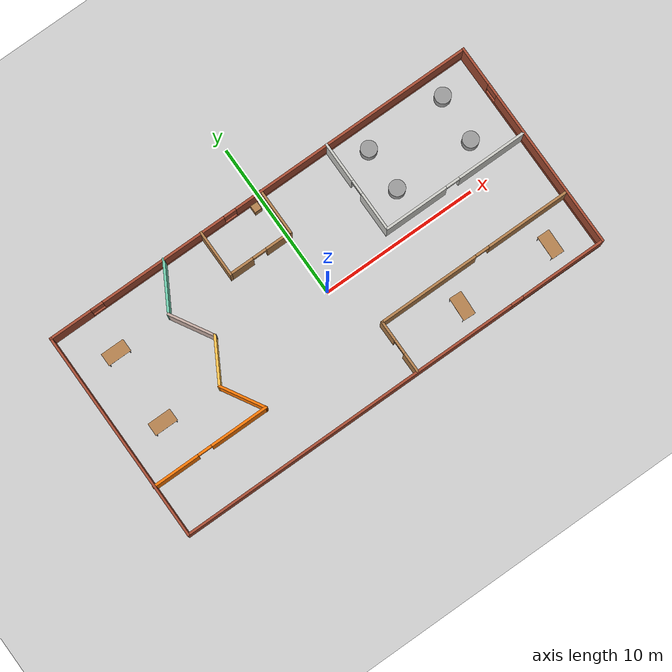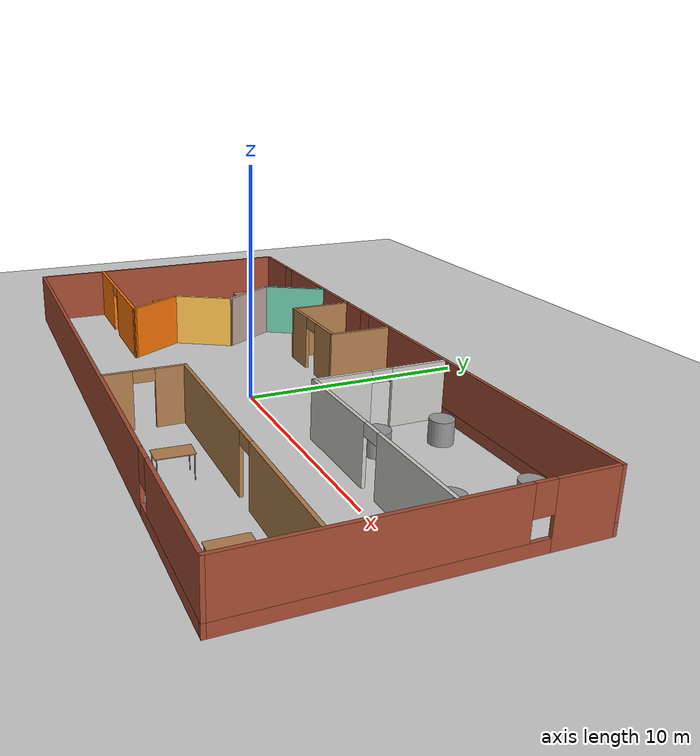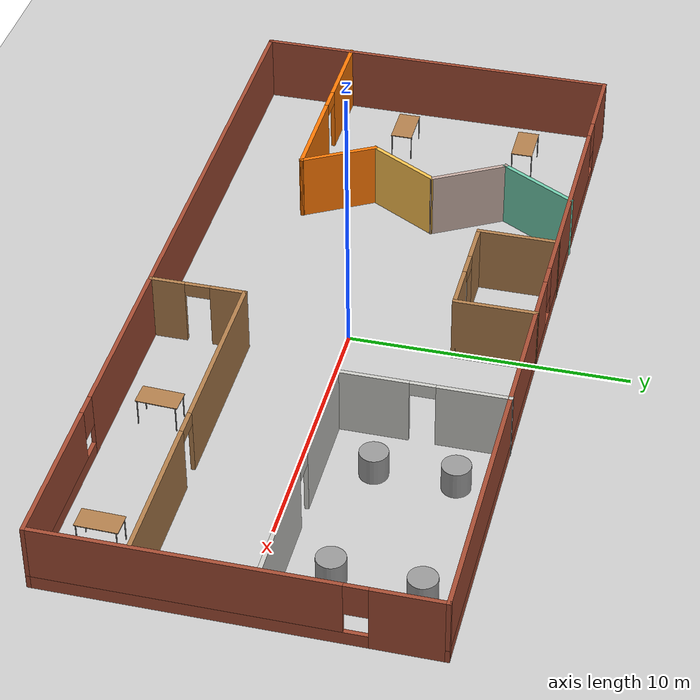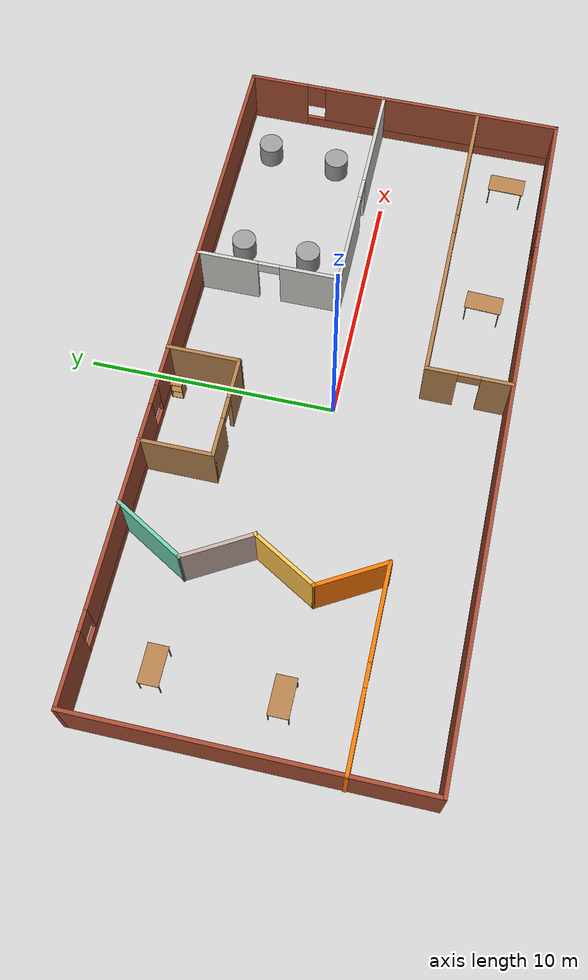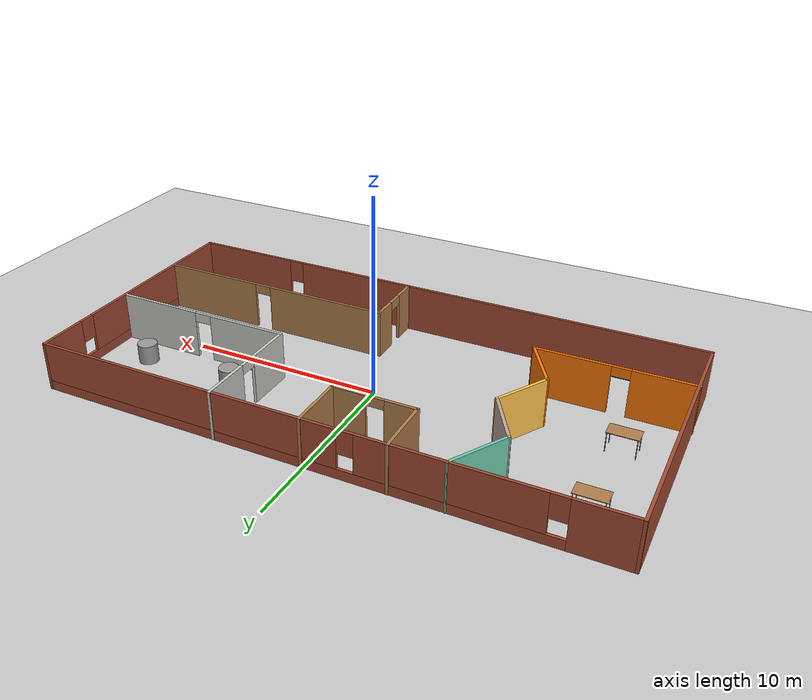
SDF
<sdf version="1.7">
 <world name="default">
  <light name="sun" type="directional">
   <pose>0 0 10 0 -0 0</pose>
   <diffuse>0.8 0.8 0.8 1</diffuse>
   <specular>0.2 0.2 0.2 1</specular>
   <attenuation>
    <range>1000</range>
    <constant>0.9</constant>
    <linear>0.01</linear>
    <quadratic>0.001</quadratic>
   </attenuation>
   <direction>-0.5 0.1 -0.9</direction>
   <spot><inner_angle>0</inner_angle><outer_angle>0</outer_angle><falloff>0</falloff></spot>
  </light>
  <model name="ground_plane">
   <static>1</static>
   <link name="link">
    <collision name="collision">
     <geometry><plane><normal>0 0 1</normal><size>100 100</size></plane></geometry>
     <surface>
      <contact><collide_bitmask>65535</collide_bitmask></contact>
      <friction><ode><mu>100</mu><mu2>50</mu2></ode></friction>
     </surface>
    </collision>
    <visual name="visual">
     <cast_shadows>0</cast_shadows>
     <geometry><plane><normal>0 0 1</normal><size>100 100</size></plane></geometry>
     <material>
      <script><uri>file://media/materials/scripts/gazebo.material</uri><name>Gazebo/Grey</name></script>
     </material>
    </visual>
   </link>
  </model>
  <gravity>0 0 -9.8</gravity>
  <magnetic_field>6e-06 2.3e-05 -4.2e-05</magnetic_field>
  <atmosphere type="adiabatic"/>
  <physics name="default_physics" default="0" type="ode">
   <max_step_size>0.001</max_step_size>
   <real_time_factor>1</real_time_factor>
   <real_time_update_rate>1000</real_time_update_rate>
  </physics>
  <scene><ambient>0.4 0.4 0.4 1</ambient><background>0.7 0.7 0.7 1</background><shadows>1</shadows></scene>
  <spherical_coordinates>
   <surface_model>EARTH_WGS84</surface_model>
   <latitude_deg>0</latitude_deg>
   <longitude_deg>0</longitude_deg>
   <elevation>0</elevation>
   <heading_deg>0</heading_deg>
  </spherical_coordinates>
  <model name="office">
   <pose>-0.0877 -0.031287 0 0 -0 0</pose>
   <link name="Wall_0">
    <collision name="Wall_0_Collision">
     <geometry><box><size>13.5 0.15 2.5</size></box></geometry>
     <pose>0 0 1.25 0 -0 0</pose>
    </collision>
    <visual name="Wall_0_Visual">
     <pose>0 0 1.25 0 -0 0</pose>
     <geometry><box><size>13.5 0.15 2.5</size></box></geometry>
     <material>
      <script><uri>file://media/materials/scripts/gazebo.material</uri><name>Gazebo/Bricks</name></script>
      <ambient>1 1 1 1</ambient>
     </material>
     <meta><layer>0</layer></meta>
    </visual>
    <pose>-14.1592 -0.021409 0 0 0 -1.5708</pose>
   </link>
   <link name="Wall_1">
    <pose>0.015849 -6.69641 0 0 -0 0</pose>
    <visual name="Wall_1_Visual_0">
     <pose>-3.18138 0 1.25 0 -0 0</pose>
     <geometry><box><size>22.1372 0.15 2.5</size></box></geometry>
     <material>
      <script><uri>file://media/materials/scripts/gazebo.material</uri><name>Gazebo/Bricks</name></script>
      <ambient>1 1 1 1</ambient>
     </material>
     <meta><layer>0</layer></meta>
    </visual>
    <collision name="Wall_1_Collision_0">
     <geometry><box><size>22.1372 0.15 2.5</size></box></geometry>
     <pose>-3.18138 0 1.25 0 -0 0</pose>
    </collision>
    <visual name="Wall_1_Visual_1">
     <pose>11.0686 0 0.25 0 -0 0</pose>
     <geometry><box><size>6.36277 0.15 0.5</size></box></geometry>
     <material>
      <script><uri>file://media/materials/scripts/gazebo.material</uri><name>Gazebo/Bricks</name></script>
      <ambient>1 1 1 1</ambient>
     </material>
     <meta><layer>0</layer></meta>
    </visual>
    <collision name="Wall_1_Collision_1">
     <geometry><box><size>6.36277 0.15 0.5</size></box></geometry>
     <pose>11.0686 0 0.25 0 -0 0</pose>
    </collision>
    <visual name="Wall_1_Visual_2">
     <pose>11.4686 0 1.5 0 -0 0</pose>
     <geometry><box><size>5.56277 0.15 2</size></box></geometry>
     <material>
      <script><uri>file://media/materials/scripts/gazebo.material</uri><name>Gazebo/Bricks</name></script>
      <ambient>1 1 1 1</ambient>
     </material>
     <meta><layer>0</layer></meta>
    </visual>
    <collision name="Wall_1_Collision_2">
     <geometry><box><size>5.56277 0.15 2</size></box></geometry>
     <pose>11.4686 0 1.5 0 -0 0</pose>
    </collision>
    <visual name="Wall_1_Visual_3">
     <pose>8.28723 0 1.9 0 -0 0</pose>
     <geometry><box><size>0.8 0.15 1.2</size></box></geometry>
     <material>
      <script><uri>file://media/materials/scripts/gazebo.material</uri><name>Gazebo/Bricks</name></script>
      <ambient>1 1 1 1</ambient>
     </material>
     <meta><layer>0</layer></meta>
    </visual>
    <collision name="Wall_1_Collision_3">
     <geometry><box><size>0.8 0.15 1.2</size></box></geometry>
     <pose>8.28723 0 1.9 0 -0 0</pose>
    </collision>
   </link>
   <link name="Wall_10">
    <collision name="Wall_10_Collision">
     <geometry><box><size>3 0.15 2.5</size></box></geometry>
     <pose>0 0 1.25 0 -0 0</pose>
    </collision>
    <visual name="Wall_10_Visual">
     <pose>0 0 1.25 0 -0 0</pose>
     <geometry><box><size>3 0.15 2.5</size></box></geometry>
     <material>
      <script><uri>file://media/materials/scripts/gazebo.material</uri><name>Gazebo/Grey</name></script>
      <ambient>0.760784 0.662745 0.627451 1</ambient>
     </material>
     <meta><layer>0</layer></meta>
    </visual>
    <pose>-7.30335 2.75019 0 0 0 -1.0472</pose>
   </link>
   <link name="Wall_11">
    <collision name="Wall_11_Collision">
     <geometry><box><size>3 0.15 2.5</size></box></geometry>
     <pose>0 0 1.25 0 -0 0</pose>
    </collision>
    <visual name="Wall_11_Visual">
     <pose>0 0 1.25 0 -0 0</pose>
     <geometry><box><size>3 0.15 2.5</size></box></geometry>
     <material>
      <script><uri>file://media/materials/scripts/gazebo.material</uri><name>Gazebo/Grey</name></script>
      <ambient>1 0.764706 0.305882 1</ambient>
     </material>
     <meta><layer>0</layer></meta>
    </visual>
    <pose>-7.30335 0.282021 0 0 0 -2.0944</pose>
   </link>
   <link name="Wall_12">
    <collision name="Wall_12_Collision">
     <geometry><box><size>3 0.15 2.5</size></box></geometry>
     <pose>0 0 1.25 0 -0 0</pose>
    </collision>
    <visual name="Wall_12_Visual">
     <pose>0 0 1.25 0 -0 0</pose>
     <geometry><box><size>3 0.15 2.5</size></box></geometry>
     <material>
      <script><uri>file://media/materials/scripts/gazebo.material</uri><name>Gazebo/Grey</name></script>
      <ambient>0.996078 0.47451 0.0196078 1</ambient>
     </material>
     <meta><layer>0</layer></meta>
    </visual>
    <pose>-7.30335 -2.18615 0 0 0 -1.0472</pose>
   </link>
   <link name="Wall_13">
    <pose>-10.3909 -3.42024 0 0 -0 3.14159</pose>
    <visual name="Wall_13_Visual_0">
     <pose>-1.98848 0 1.25 0 -0 0</pose>
     <geometry><box><size>3.77303 0.15 2.5</size></box></geometry>
     <material>
      <script><uri>file://media/materials/scripts/gazebo.material</uri><name>Gazebo/Grey</name></script>
      <ambient>0.996078 0.47451 0.0196078 1</ambient>
     </material>
     <meta><layer>0</layer></meta>
    </visual>
    <collision name="Wall_13_Collision_0">
     <geometry><box><size>3.77303 0.15 2.5</size></box></geometry>
     <pose>-1.98848 0 1.25 0 -0 0</pose>
    </collision>
    <visual name="Wall_13_Visual_1">
     <pose>2.33652 0 1.25 0 -0 0</pose>
     <geometry><box><size>3.07697 0.15 2.5</size></box></geometry>
     <material>
      <script><uri>file://media/materials/scripts/gazebo.material</uri><name>Gazebo/Grey</name></script>
      <ambient>0.996078 0.47451 0.0196078 1</ambient>
     </material>
     <meta><layer>0</layer></meta>
    </visual>
    <collision name="Wall_13_Collision_1">
     <geometry><box><size>3.07697 0.15 2.5</size></box></geometry>
     <pose>2.33652 0 1.25 0 -0 0</pose>
    </collision>
    <visual name="Wall_13_Visual_2">
     <pose>0.348034 0 2.25 0 -0 0</pose>
     <geometry><box><size>0.9 0.15 0.5</size></box></geometry>
     <material>
      <script><uri>file://media/materials/scripts/gazebo.material</uri><name>Gazebo/Grey</name></script>
      <ambient>0.996078 0.47451 0.0196078 1</ambient>
     </material>
     <meta><layer>0</layer></meta>
    </visual>
    <collision name="Wall_13_Collision_2">
     <geometry><box><size>0.9 0.15 0.5</size></box></geometry>
     <pose>0.348034 0 2.25 0 -0 0</pose>
    </collision>
   </link>
   <link name="Wall_15">
    <pose>4.73531 3.74396 0 0 0 -1.5708</pose>
    <visual name="Wall_15_Visual_0">
     <pose>-1.71476 0 1.25 0 -0 0</pose>
     <geometry><box><size>2.57049 0.15 2.5</size></box></geometry>
     <material>
      <script><uri>file://media/materials/scripts/gazebo.material</uri><name>Gazebo/CeilingTiled</name></script>
      <ambient>1 1 1 1</ambient>
     </material>
     <meta><layer>0</layer></meta>
    </visual>
    <collision name="Wall_15_Collision_0">
     <geometry><box><size>2.57049 0.15 2.5</size></box></geometry>
     <pose>-1.71476 0 1.25 0 -0 0</pose>
    </collision>
    <visual name="Wall_15_Visual_1">
     <pose>1.73524 0 1.25 0 -0 0</pose>
     <geometry><box><size>2.52951 0.15 2.5</size></box></geometry>
     <material>
      <script><uri>file://media/materials/scripts/gazebo.material</uri><name>Gazebo/CeilingTiled</name></script>
      <ambient>1 1 1 1</ambient>
     </material>
     <meta><layer>0</layer></meta>
    </visual>
    <collision name="Wall_15_Collision_1">
     <geometry><box><size>2.52951 0.15 2.5</size></box></geometry>
     <pose>1.73524 0 1.25 0 -0 0</pose>
    </collision>
    <visual name="Wall_15_Visual_2">
     <pose>0.020489 0 2.25 0 -0 0</pose>
     <geometry><box><size>0.9 0.15 0.5</size></box></geometry>
     <material>
      <script><uri>file://media/materials/scripts/gazebo.material</uri><name>Gazebo/CeilingTiled</name></script>
      <ambient>1 1 1 1</ambient>
     </material>
     <meta><layer>0</layer></meta>
    </visual>
    <collision name="Wall_15_Collision_2">
     <geometry><box><size>0.9 0.15 0.5</size></box></geometry>
     <pose>0.020489 0 2.25 0 -0 0</pose>
    </collision>
   </link>
   <link name="Wall_16">
    <pose>9.41031 0.818959 0 0 -0 0</pose>
    <visual name="Wall_16_Visual_0">
     <pose>-2.67653 0 1.25 0 -0 0</pose>
     <geometry><box><size>4.14695 0.15 2.5</size></box></geometry>
     <material>
      <script><uri>file://media/materials/scripts/gazebo.material</uri><name>Gazebo/CeilingTiled</name></script>
      <ambient>1 1 1 1</ambient>
     </material>
     <meta><layer>0</layer></meta>
    </visual>
    <collision name="Wall_16_Collision_0">
     <geometry><box><size>4.14695 0.15 2.5</size></box></geometry>
     <pose>-2.67653 0 1.25 0 -0 0</pose>
    </collision>
    <visual name="Wall_16_Visual_1">
     <pose>2.52347 0 1.25 0 -0 0</pose>
     <geometry><box><size>4.45305 0.15 2.5</size></box></geometry>
     <material>
      <script><uri>file://media/materials/scripts/gazebo.material</uri><name>Gazebo/CeilingTiled</name></script>
      <ambient>1 1 1 1</ambient>
     </material>
     <meta><layer>0</layer></meta>
    </visual>
    <collision name="Wall_16_Collision_1">
     <geometry><box><size>4.45305 0.15 2.5</size></box></geometry>
     <pose>2.52347 0 1.25 0 -0 0</pose>
    </collision>
    <visual name="Wall_16_Visual_2">
     <pose>-0.153052 0 2.25 0 -0 0</pose>
     <geometry><box><size>0.9 0.15 0.5</size></box></geometry>
     <material>
      <script><uri>file://media/materials/scripts/gazebo.material</uri><name>Gazebo/CeilingTiled</name></script>
      <ambient>1 1 1 1</ambient>
     </material>
     <meta><layer>0</layer></meta>
    </visual>
    <collision name="Wall_16_Collision_2">
     <geometry><box><size>0.9 0.15 0.5</size></box></geometry>
     <pose>-0.153052 0 2.25 0 -0 0</pose>
    </collision>
   </link>
   <link name="Wall_18">
    <pose>1.45793 -4.97297 0 0 -0 1.5708</pose>
    <visual name="Wall_18_Visual_0">
     <pose>-1.10779 0 1.25 0 -0 0</pose>
     <geometry><box><size>1.28443 0.15 2.5</size></box></geometry>
     <material>
      <script><uri>file://media/materials/scripts/gazebo.material</uri><name>Gazebo/Wood</name></script>
      <ambient>1 1 1 1</ambient>
     </material>
     <meta><layer>0</layer></meta>
    </visual>
    <collision name="Wall_18_Collision_0">
     <geometry><box><size>1.28443 0.15 2.5</size></box></geometry>
     <pose>-1.10779 0 1.25 0 -0 0</pose>
    </collision>
    <visual name="Wall_18_Visual_1">
     <pose>1.09221 0 1.25 0 -0 0</pose>
     <geometry><box><size>1.31557 0.15 2.5</size></box></geometry>
     <material>
      <script><uri>file://media/materials/scripts/gazebo.material</uri><name>Gazebo/Wood</name></script>
      <ambient>1 1 1 1</ambient>
     </material>
     <meta><layer>0</layer></meta>
    </visual>
    <collision name="Wall_18_Collision_1">
     <geometry><box><size>1.31557 0.15 2.5</size></box></geometry>
     <pose>1.09221 0 1.25 0 -0 0</pose>
    </collision>
    <visual name="Wall_18_Visual_2">
     <pose>-0.01557 0 2.25 0 -0 0</pose>
     <geometry><box><size>0.9 0.15 0.5</size></box></geometry>
     <material>
      <script><uri>file://media/materials/scripts/gazebo.material</uri><name>Gazebo/Wood</name></script>
      <ambient>1 1 1 1</ambient>
     </material>
     <meta><layer>0</layer></meta>
    </visual>
    <collision name="Wall_18_Collision_2">
     <geometry><box><size>0.9 0.15 0.5</size></box></geometry>
     <pose>-0.01557 0 2.25 0 -0 0</pose>
    </collision>
   </link>
   <link name="Wall_19">
    <pose>7.75793 -3.29797 0 0 -0 0</pose>
    <visual name="Wall_19_Visual_0">
     <pose>-3.11918 0 1.25 0 -0 0</pose>
     <geometry><box><size>6.51164 0.15 2.5</size></box></geometry>
     <material>
      <script><uri>file://media/materials/scripts/gazebo.material</uri><name>Gazebo/Wood</name></script>
      <ambient>1 1 1 1</ambient>
     </material>
     <meta><layer>0</layer></meta>
    </visual>
    <collision name="Wall_19_Collision_0">
     <geometry><box><size>6.51164 0.15 2.5</size></box></geometry>
     <pose>-3.11918 0 1.25 0 -0 0</pose>
    </collision>
    <visual name="Wall_19_Visual_1">
     <pose>3.70582 0 1.25 0 -0 0</pose>
     <geometry><box><size>5.33836 0.15 2.5</size></box></geometry>
     <material>
      <script><uri>file://media/materials/scripts/gazebo.material</uri><name>Gazebo/Wood</name></script>
      <ambient>1 1 1 1</ambient>
     </material>
     <meta><layer>0</layer></meta>
    </visual>
    <collision name="Wall_19_Collision_1">
     <geometry><box><size>5.33836 0.15 2.5</size></box></geometry>
     <pose>3.70582 0 1.25 0 -0 0</pose>
    </collision>
    <visual name="Wall_19_Visual_2">
     <pose>0.586637 0 2.25 0 -0 0</pose>
     <geometry><box><size>0.9 0.15 0.5</size></box></geometry>
     <material>
      <script><uri>file://media/materials/scripts/gazebo.material</uri><name>Gazebo/Wood</name></script>
      <ambient>1 1 1 1</ambient>
     </material>
     <meta><layer>0</layer></meta>
    </visual>
    <collision name="Wall_19_Collision_2">
     <geometry><box><size>0.9 0.15 0.5</size></box></geometry>
     <pose>0.586637 0 2.25 0 -0 0</pose>
    </collision>
   </link>
   <link name="Wall_22">
    <collision name="Wall_22_Collision">
     <geometry><box><size>3 0.15 2.5</size></box></geometry>
     <pose>0 0 1.25 0 -0 0</pose>
    </collision>
    <visual name="Wall_22_Visual">
     <pose>0 0 1.25 0 -0 0</pose>
     <geometry><box><size>3 0.15 2.5</size></box></geometry>
     <material>
      <script><uri>file://media/materials/scripts/gazebo.material</uri><name>Gazebo/Wood</name></script>
      <ambient>1 1 1 1</ambient>
     </material>
     <meta><layer>0</layer></meta>
    </visual>
    <pose>-3.89373 5.24396 0 0 0 -1.5708</pose>
   </link>
   <link name="Wall_23">
    <pose>-1.84373 3.81896 0 0 -0 0</pose>
    <visual name="Wall_23_Visual_0">
     <pose>-1.31684 0 1.25 0 -0 0</pose>
     <geometry><box><size>1.61632 0.15 2.5</size></box></geometry>
     <material>
      <script><uri>file://media/materials/scripts/gazebo.material</uri><name>Gazebo/Wood</name></script>
      <ambient>1 1 1 1</ambient>
     </material>
     <meta><layer>0</layer></meta>
    </visual>
    <collision name="Wall_23_Collision_0">
     <geometry><box><size>1.61632 0.15 2.5</size></box></geometry>
     <pose>-1.31684 0 1.25 0 -0 0</pose>
    </collision>
    <visual name="Wall_23_Visual_1">
     <pose>1.25816 0 1.25 0 -0 0</pose>
     <geometry><box><size>1.73368 0.15 2.5</size></box></geometry>
     <material>
      <script><uri>file://media/materials/scripts/gazebo.material</uri><name>Gazebo/Wood</name></script>
      <ambient>1 1 1 1</ambient>
     </material>
     <meta><layer>0</layer></meta>
    </visual>
    <collision name="Wall_23_Collision_1">
     <geometry><box><size>1.73368 0.15 2.5</size></box></geometry>
     <pose>1.25816 0 1.25 0 -0 0</pose>
    </collision>
    <visual name="Wall_23_Visual_2">
     <pose>-0.058683 0 2.25 0 -0 0</pose>
     <geometry><box><size>0.9 0.15 0.5</size></box></geometry>
     <material>
      <script><uri>file://media/materials/scripts/gazebo.material</uri><name>Gazebo/Wood</name></script>
      <ambient>1 1 1 1</ambient>
     </material>
     <meta><layer>0</layer></meta>
    </visual>
    <collision name="Wall_23_Collision_2">
     <geometry><box><size>0.9 0.15 0.5</size></box></geometry>
     <pose>-0.058683 0 2.25 0 -0 0</pose>
    </collision>
   </link>
   <link name="Wall_24">
    <collision name="Wall_24_Collision">
     <geometry><box><size>3 0.15 2.5</size></box></geometry>
     <pose>0 0 1.25 0 -0 0</pose>
    </collision>
    <visual name="Wall_24_Visual">
     <pose>0 0 1.25 0 -0 0</pose>
     <geometry><box><size>3 0.15 2.5</size></box></geometry>
     <material>
      <script><uri>file://media/materials/scripts/gazebo.material</uri><name>Gazebo/Wood</name></script>
      <ambient>1 1 1 1</ambient>
     </material>
     <meta><layer>0</layer></meta>
    </visual>
    <pose>0.206268 5.24396 0 0 -0 1.5708</pose>
   </link>
   <link name="Wall_5">
    <pose>0.015849 6.65359 0 0 -0 0</pose>
    <visual name="Wall_5_Visual_0">
     <pose>-12.8476 0 1.25 0 -0 0</pose>
     <geometry><box><size>2.80487 0.15 2.5</size></box></geometry>
     <material>
      <script><uri>file://media/materials/scripts/gazebo.material</uri><name>Gazebo/Bricks</name></script>
      <ambient>1 1 1 1</ambient>
     </material>
     <meta><layer>0</layer></meta>
    </visual>
    <collision name="Wall_5_Collision_0">
     <geometry><box><size>2.80487 0.15 2.5</size></box></geometry>
     <pose>-12.8476 0 1.25 0 -0 0</pose>
    </collision>
    <visual name="Wall_5_Visual_1">
     <pose>1.40243 0 0.25 0 -0 0</pose>
     <geometry><box><size>25.6951 0.15 0.5</size></box></geometry>
     <material>
      <script><uri>file://media/materials/scripts/gazebo.material</uri><name>Gazebo/Bricks</name></script>
      <ambient>1 1 1 1</ambient>
     </material>
     <meta><layer>0</layer></meta>
    </visual>
    <collision name="Wall_5_Collision_1">
     <geometry><box><size>25.6951 0.15 0.5</size></box></geometry>
     <pose>1.40243 0 0.25 0 -0 0</pose>
    </collision>
    <visual name="Wall_5_Visual_2">
     <pose>-6.50244 0 1.5 0 -0 0</pose>
     <geometry><box><size>8.28538 0.15 2</size></box></geometry>
     <material>
      <script><uri>file://media/materials/scripts/gazebo.material</uri><name>Gazebo/Bricks</name></script>
      <ambient>1 1 1 1</ambient>
     </material>
     <meta><layer>0</layer></meta>
    </visual>
    <collision name="Wall_5_Collision_2">
     <geometry><box><size>8.28538 0.15 2</size></box></geometry>
     <pose>-6.50244 0 1.5 0 -0 0</pose>
    </collision>
    <visual name="Wall_5_Visual_3">
     <pose>6.34513 0 1.5 0 -0 0</pose>
     <geometry><box><size>15.8097 0.15 2</size></box></geometry>
     <material>
      <script><uri>file://media/materials/scripts/gazebo.material</uri><name>Gazebo/Bricks</name></script>
      <ambient>1 1 1 1</ambient>
     </material>
     <meta><layer>0</layer></meta>
    </visual>
    <collision name="Wall_5_Collision_3">
     <geometry><box><size>15.8097 0.15 2</size></box></geometry>
     <pose>6.34513 0 1.5 0 -0 0</pose>
    </collision>
    <visual name="Wall_5_Visual_4">
     <pose>-11.0451 0 1.9 0 -0 0</pose>
     <geometry><box><size>0.8 0.15 1.2</size></box></geometry>
     <material>
      <script><uri>file://media/materials/scripts/gazebo.material</uri><name>Gazebo/Bricks</name></script>
      <ambient>1 1 1 1</ambient>
     </material>
     <meta><layer>0</layer></meta>
    </visual>
    <collision name="Wall_5_Collision_4">
     <geometry><box><size>0.8 0.15 1.2</size></box></geometry>
     <pose>-11.0451 0 1.9 0 -0 0</pose>
    </collision>
    <visual name="Wall_5_Visual_5">
     <pose>-1.95975 0 1.9 0 -0 0</pose>
     <geometry><box><size>0.8 0.15 1.2</size></box></geometry>
     <material>
      <script><uri>file://media/materials/scripts/gazebo.material</uri><name>Gazebo/Bricks</name></script>
      <ambient>1 1 1 1</ambient>
     </material>
     <meta><layer>0</layer></meta>
    </visual>
    <collision name="Wall_5_Collision_5">
     <geometry><box><size>0.8 0.15 1.2</size></box></geometry>
     <pose>-1.95975 0 1.9 0 -0 0</pose>
    </collision>
   </link>
   <link name="Wall_6">
    <pose>14.1908 -0.021409 0 0 0 -1.5708</pose>
    <visual name="Wall_6_Visual_0">
     <pose>-5.48893 0 1.25 0 -0 0</pose>
     <geometry><box><size>2.52215 0.15 2.5</size></box></geometry>
     <material>
      <script><uri>file://media/materials/scripts/gazebo.material</uri><name>Gazebo/Bricks</name></script>
      <ambient>1 1 1 1</ambient>
     </material>
     <meta><layer>0</layer></meta>
    </visual>
    <collision name="Wall_6_Collision_0">
     <geometry><box><size>2.52215 0.15 2.5</size></box></geometry>
     <pose>-5.48893 0 1.25 0 -0 0</pose>
    </collision>
    <visual name="Wall_6_Visual_1">
     <pose>1.26107 0 0.25 0 -0 0</pose>
     <geometry><box><size>10.9779 0.15 0.5</size></box></geometry>
     <material>
      <script><uri>file://media/materials/scripts/gazebo.material</uri><name>Gazebo/Bricks</name></script>
      <ambient>1 1 1 1</ambient>
     </material>
     <meta><layer>0</layer></meta>
    </visual>
    <collision name="Wall_6_Collision_1">
     <geometry><box><size>10.9779 0.15 0.5</size></box></geometry>
     <pose>1.26107 0 0.25 0 -0 0</pose>
    </collision>
    <visual name="Wall_6_Visual_2">
     <pose>1.66108 0 1.5 0 -0 0</pose>
     <geometry><box><size>10.1778 0.15 2</size></box></geometry>
     <material>
      <script><uri>file://media/materials/scripts/gazebo.material</uri><name>Gazebo/Bricks</name></script>
      <ambient>1 1 1 1</ambient>
     </material>
     <meta><layer>0</layer></meta>
    </visual>
    <collision name="Wall_6_Collision_2">
     <geometry><box><size>10.1778 0.15 2</size></box></geometry>
     <pose>1.66108 0 1.5 0 -0 0</pose>
    </collision>
    <visual name="Wall_6_Visual_3">
     <pose>-3.82785 0 1.9 0 -0 0</pose>
     <geometry><box><size>0.8 0.15 1.2</size></box></geometry>
     <material>
      <script><uri>file://media/materials/scripts/gazebo.material</uri><name>Gazebo/Bricks</name></script>
      <ambient>1 1 1 1</ambient>
     </material>
     <meta><layer>0</layer></meta>
    </visual>
    <collision name="Wall_6_Collision_3">
     <geometry><box><size>0.8 0.15 1.2</size></box></geometry>
     <pose>-3.82785 0 1.9 0 -0 0</pose>
    </collision>
   </link>
   <link name="Wall_9">
    <collision name="Wall_9_Collision">
     <geometry><box><size>3.25 0.15 2.5</size></box></geometry>
     <pose>0 0 1.25 0 -0 0</pose>
    </collision>
    <visual name="Wall_9_Visual">
     <pose>0 0 1.25 0 -0 0</pose>
     <geometry><box><size>3.25 0.15 2.5</size></box></geometry>
     <material>
      <script><uri>file://media/materials/scripts/gazebo.material</uri><name>Gazebo/Grey</name></script>
      <ambient>0.435294 0.796078 0.67451 1</ambient>
     </material>
     <meta><layer>0</layer></meta>
    </visual>
    <pose>-7.24085 5.32662 0 0 0 -2.0944</pose>
   </link>
   <static>1</static>
  </model>
  <model name="cabinet">
   <static>1</static>
   <link name="cabinet_bottom_plate">
    <inertial>
     <pose>0 0 -1 0 -0 0</pose>
     <inertia><ixx>2.05</ixx><ixy>0</ixy><ixz>0</ixz><iyy>2.05</iyy><iyz>0</iyz><izz>2.05</izz></inertia>
     <mass>25</mass>
    </inertial>
    <collision name="cabinet_bottom_plate_geom">
     <pose>0 0 0.01 0 -0 0</pose>
     <geometry><box><size>0.45 0.45 0.02</size></box></geometry>
    </collision>
    <visual name="cabinet_bottom_plate_geom_visual">
     <pose>0 0 0.01 0 -0 0</pose>
     <geometry><box><size>0.45 0.45 0.02</size></box></geometry>
     <material>
      <script><uri>file://media/materials/scripts/gazebo.material</uri><name>Gazebo/Wood</name></script>
     </material>
    </visual>
    <collision name="cabinet_bottom_plate_geom_cabinet_back_plate">
     <pose>0.235 0 0.51 0 -0 0</pose>
     <geometry><box><size>0.02 0.45 1.02</size></box></geometry>
    </collision>
    <visual name="cabinet_bottom_plate_geom_cabinet_back_plate_visual">
     <pose>0.235 0 0.51 0 -0 0</pose>
     <geometry><box><size>0.02 0.45 1.02</size></box></geometry>
     <material>
      <script><uri>file://media/materials/scripts/gazebo.material</uri><name>Gazebo/Wood</name></script>
     </material>
    </visual>
    <collision name="cabinet_bottom_plate_geom_cabinet_left_plate">
     <pose>0 0.235 0.51 0 -0 0</pose>
     <geometry><box><size>0.45 0.02 1.02</size></box></geometry>
    </collision>
    <visual name="cabinet_bottom_plate_geom_cabinet_left_plate_visual">
     <pose>0 0.235 0.51 0 -0 0</pose>
     <geometry><box><size>0.45 0.02 1.02</size></box></geometry>
     <material>
      <script><uri>file://media/materials/scripts/gazebo.material</uri><name>Gazebo/Wood</name></script>
     </material>
    </visual>
    <collision name="cabinet_bottom_plate_geom_cabinet_middle_plate">
     <pose>0 0 0.51 0 -0 0</pose>
     <geometry><box><size>0.45 0.45 0.02</size></box></geometry>
    </collision>
    <visual name="cabinet_bottom_plate_geom_cabinet_middle_plate_visual">
     <pose>0 0 0.51 0 -0 0</pose>
     <geometry><box><size>0.45 0.45 0.02</size></box></geometry>
     <material>
      <script><uri>file://media/materials/scripts/gazebo.material</uri><name>Gazebo/Wood</name></script>
     </material>
    </visual>
    <collision name="cabinet_bottom_plate_geom_cabinet_right_plate">
     <pose>0 -0.235 0.51 0 -0 0</pose>
     <geometry><box><size>0.45 0.02 1.02</size></box></geometry>
    </collision>
    <visual name="cabinet_bottom_plate_geom_cabinet_right_plate_visual">
     <pose>0 -0.235 0.51 0 -0 0</pose>
     <geometry><box><size>0.45 0.02 1.02</size></box></geometry>
     <material>
      <script><uri>file://media/materials/scripts/gazebo.material</uri><name>Gazebo/Wood</name></script>
     </material>
    </visual>
    <collision name="cabinet_bottom_plate_geom_cabinet_top_plate">
     <pose>0 0 1.01 0 -0 0</pose>
     <geometry><box><size>0.45 0.45 0.02</size></box></geometry>
    </collision>
    <visual name="cabinet_bottom_plate_geom_cabinet_top_plate_visual">
     <pose>0 0 1.01 0 -0 0</pose>
     <geometry><box><size>0.45 0.45 0.02</size></box></geometry>
     <material>
      <script><uri>file://media/materials/scripts/gazebo.material</uri><name>Gazebo/Wood</name></script>
     </material>
    </visual>
   </link>
   <pose>-0.545344 6.23489 0 0 -0 0</pose>
  </model>
  <model name="table">
   <static>1</static>
   <link name="link">
    <collision name="surface">
     <pose>0 0 1 0 -0 0</pose>
     <geometry><box><size>1.5 0.8 0.03</size></box></geometry>
     <surface><friction><ode><mu>0.6</mu><mu2>0.6</mu2></ode></friction></surface>
    </collision>
    <visual name="visual1">
     <pose>0 0 1 0 -0 0</pose>
     <geometry><box><size>1.5 0.8 0.03</size></box></geometry>
     <material>
      <script><uri>file://media/materials/scripts/gazebo.material</uri><name>Gazebo/Wood</name></script>
     </material>
    </visual>
    <collision name="front_left_leg">
     <pose>0.68 0.38 0.5 0 -0 0</pose>
     <geometry><cylinder><radius>0.02</radius><length>1</length></cylinder></geometry>
    </collision>
    <visual name="front_left_leg">
     <pose>0.68 0.38 0.5 0 -0 0</pose>
     <geometry><cylinder><radius>0.02</radius><length>1</length></cylinder></geometry>
     <material>
      <script><uri>file://media/materials/scripts/gazebo.material</uri><name>Gazebo/Grey</name></script>
     </material>
    </visual>
    <collision name="front_right_leg">
     <pose>0.68 -0.38 0.5 0 -0 0</pose>
     <geometry><cylinder><radius>0.02</radius><length>1</length></cylinder></geometry>
    </collision>
    <visual name="front_right_leg">
     <pose>0.68 -0.38 0.5 0 -0 0</pose>
     <geometry><cylinder><radius>0.02</radius><length>1</length></cylinder></geometry>
     <material>
      <script><uri>file://media/materials/scripts/gazebo.material</uri><name>Gazebo/Grey</name></script>
     </material>
    </visual>
    <collision name="back_right_leg">
     <pose>-0.68 -0.38 0.5 0 -0 0</pose>
     <geometry><cylinder><radius>0.02</radius><length>1</length></cylinder></geometry>
    </collision>
    <visual name="back_right_leg">
     <pose>-0.68 -0.38 0.5 0 -0 0</pose>
     <geometry><cylinder><radius>0.02</radius><length>1</length></cylinder></geometry>
     <material>
      <script><uri>file://media/materials/scripts/gazebo.material</uri><name>Gazebo/Grey</name></script>
     </material>
    </visual>
    <collision name="back_left_leg">
     <pose>-0.68 0.38 0.5 0 -0 0</pose>
     <geometry><cylinder><radius>0.02</radius><length>1</length></cylinder></geometry>
    </collision>
    <visual name="back_left_leg">
     <pose>-0.68 0.38 0.5 0 -0 0</pose>
     <geometry><cylinder><radius>0.02</radius><length>1</length></cylinder></geometry>
     <material>
      <script><uri>file://media/materials/scripts/gazebo.material</uri><name>Gazebo/Grey</name></script>
     </material>
    </visual>
   </link>
   <pose>-11.7268 4.05281 0 0 -0 0</pose>
  </model>
  <model name="table_0">
   <static>1</static>
   <link name="link">
    <collision name="surface">
     <pose>0 0 1 0 -0 0</pose>
     <geometry><box><size>1.5 0.8 0.03</size></box></geometry>
     <surface><friction><ode><mu>0.6</mu><mu2>0.6</mu2></ode></friction></surface>
    </collision>
    <visual name="visual1">
     <pose>0 0 1 0 -0 0</pose>
     <geometry><box><size>1.5 0.8 0.03</size></box></geometry>
     <material>
      <script><uri>file://media/materials/scripts/gazebo.material</uri><name>Gazebo/Wood</name></script>
     </material>
    </visual>
    <collision name="front_left_leg">
     <pose>0.68 0.38 0.5 0 -0 0</pose>
     <geometry><cylinder><radius>0.02</radius><length>1</length></cylinder></geometry>
    </collision>
    <visual name="front_left_leg">
     <pose>0.68 0.38 0.5 0 -0 0</pose>
     <geometry><cylinder><radius>0.02</radius><length>1</length></cylinder></geometry>
     <material>
      <script><uri>file://media/materials/scripts/gazebo.material</uri><name>Gazebo/Grey</name></script>
     </material>
    </visual>
    <collision name="front_right_leg">
     <pose>0.68 -0.38 0.5 0 -0 0</pose>
     <geometry><cylinder><radius>0.02</radius><length>1</length></cylinder></geometry>
    </collision>
    <visual name="front_right_leg">
     <pose>0.68 -0.38 0.5 0 -0 0</pose>
     <geometry><cylinder><radius>0.02</radius><length>1</length></cylinder></geometry>
     <material>
      <script><uri>file://media/materials/scripts/gazebo.material</uri><name>Gazebo/Grey</name></script>
     </material>
    </visual>
    <collision name="back_right_leg">
     <pose>-0.68 -0.38 0.5 0 -0 0</pose>
     <geometry><cylinder><radius>0.02</radius><length>1</length></cylinder></geometry>
    </collision>
    <visual name="back_right_leg">
     <pose>-0.68 -0.38 0.5 0 -0 0</pose>
     <geometry><cylinder><radius>0.02</radius><length>1</length></cylinder></geometry>
     <material>
      <script><uri>file://media/materials/scripts/gazebo.material</uri><name>Gazebo/Grey</name></script>
     </material>
    </visual>
    <collision name="back_left_leg">
     <pose>-0.68 0.38 0.5 0 -0 0</pose>
     <geometry><cylinder><radius>0.02</radius><length>1</length></cylinder></geometry>
    </collision>
    <visual name="back_left_leg">
     <pose>-0.68 0.38 0.5 0 -0 0</pose>
     <geometry><cylinder><radius>0.02</radius><length>1</length></cylinder></geometry>
     <material>
      <script><uri>file://media/materials/scripts/gazebo.material</uri><name>Gazebo/Grey</name></script>
     </material>
    </visual>
   </link>
   <pose>-11.8347 -0.684355 0 0 -0 0</pose>
  </model>
  <model name="table_1">
   <static>1</static>
   <link name="link">
    <collision name="surface">
     <pose>0 0 1 0 -0 0</pose>
     <geometry><box><size>1.5 0.8 0.03</size></box></geometry>
     <surface><friction><ode><mu>0.6</mu><mu2>0.6</mu2></ode></friction></surface>
    </collision>
    <visual name="visual1">
     <pose>0 0 1 0 -0 0</pose>
     <geometry><box><size>1.5 0.8 0.03</size></box></geometry>
     <material>
      <script><uri>file://media/materials/scripts/gazebo.material</uri><name>Gazebo/Wood</name></script>
     </material>
    </visual>
    <collision name="front_left_leg">
     <pose>0.68 0.38 0.5 0 -0 0</pose>
     <geometry><cylinder><radius>0.02</radius><length>1</length></cylinder></geometry>
    </collision>
    <visual name="front_left_leg">
     <pose>0.68 0.38 0.5 0 -0 0</pose>
     <geometry><cylinder><radius>0.02</radius><length>1</length></cylinder></geometry>
     <material>
      <script><uri>file://media/materials/scripts/gazebo.material</uri><name>Gazebo/Grey</name></script>
     </material>
    </visual>
    <collision name="front_right_leg">
     <pose>0.68 -0.38 0.5 0 -0 0</pose>
     <geometry><cylinder><radius>0.02</radius><length>1</length></cylinder></geometry>
    </collision>
    <visual name="front_right_leg">
     <pose>0.68 -0.38 0.5 0 -0 0</pose>
     <geometry><cylinder><radius>0.02</radius><length>1</length></cylinder></geometry>
     <material>
      <script><uri>file://media/materials/scripts/gazebo.material</uri><name>Gazebo/Grey</name></script>
     </material>
    </visual>
    <collision name="back_right_leg">
     <pose>-0.68 -0.38 0.5 0 -0 0</pose>
     <geometry><cylinder><radius>0.02</radius><length>1</length></cylinder></geometry>
    </collision>
    <visual name="back_right_leg">
     <pose>-0.68 -0.38 0.5 0 -0 0</pose>
     <geometry><cylinder><radius>0.02</radius><length>1</length></cylinder></geometry>
     <material>
      <script><uri>file://media/materials/scripts/gazebo.material</uri><name>Gazebo/Grey</name></script>
     </material>
    </visual>
    <collision name="back_left_leg">
     <pose>-0.68 0.38 0.5 0 -0 0</pose>
     <geometry><cylinder><radius>0.02</radius><length>1</length></cylinder></geometry>
    </collision>
    <visual name="back_left_leg">
     <pose>-0.68 0.38 0.5 0 -0 0</pose>
     <geometry><cylinder><radius>0.02</radius><length>1</length></cylinder></geometry>
     <material>
      <script><uri>file://media/materials/scripts/gazebo.material</uri><name>Gazebo/Grey</name></script>
     </material>
    </visual>
   </link>
   <pose>5.69325 -5.09077 0 0 0 -1.61488</pose>
  </model>
  <model name="table_2">
   <static>1</static>
   <link name="link">
    <collision name="surface">
     <pose>0 0 1 0 -0 0</pose>
     <geometry><box><size>1.5 0.8 0.03</size></box></geometry>
     <surface><friction><ode><mu>0.6</mu><mu2>0.6</mu2></ode></friction></surface>
    </collision>
    <visual name="visual1">
     <pose>0 0 1 0 -0 0</pose>
     <geometry><box><size>1.5 0.8 0.03</size></box></geometry>
     <material>
      <script><uri>file://media/materials/scripts/gazebo.material</uri><name>Gazebo/Wood</name></script>
     </material>
    </visual>
    <collision name="front_left_leg">
     <pose>0.68 0.38 0.5 0 -0 0</pose>
     <geometry><cylinder><radius>0.02</radius><length>1</length></cylinder></geometry>
    </collision>
    <visual name="front_left_leg">
     <pose>0.68 0.38 0.5 0 -0 0</pose>
     <geometry><cylinder><radius>0.02</radius><length>1</length></cylinder></geometry>
     <material>
      <script><uri>file://media/materials/scripts/gazebo.material</uri><name>Gazebo/Grey</name></script>
     </material>
    </visual>
    <collision name="front_right_leg">
     <pose>0.68 -0.38 0.5 0 -0 0</pose>
     <geometry><cylinder><radius>0.02</radius><length>1</length></cylinder></geometry>
    </collision>
    <visual name="front_right_leg">
     <pose>0.68 -0.38 0.5 0 -0 0</pose>
     <geometry><cylinder><radius>0.02</radius><length>1</length></cylinder></geometry>
     <material>
      <script><uri>file://media/materials/scripts/gazebo.material</uri><name>Gazebo/Grey</name></script>
     </material>
    </visual>
    <collision name="back_right_leg">
     <pose>-0.68 -0.38 0.5 0 -0 0</pose>
     <geometry><cylinder><radius>0.02</radius><length>1</length></cylinder></geometry>
    </collision>
    <visual name="back_right_leg">
     <pose>-0.68 -0.38 0.5 0 -0 0</pose>
     <geometry><cylinder><radius>0.02</radius><length>1</length></cylinder></geometry>
     <material>
      <script><uri>file://media/materials/scripts/gazebo.material</uri><name>Gazebo/Grey</name></script>
     </material>
    </visual>
    <collision name="back_left_leg">
     <pose>-0.68 0.38 0.5 0 -0 0</pose>
     <geometry><cylinder><radius>0.02</radius><length>1</length></cylinder></geometry>
    </collision>
    <visual name="back_left_leg">
     <pose>-0.68 0.38 0.5 0 -0 0</pose>
     <geometry><cylinder><radius>0.02</radius><length>1</length></cylinder></geometry>
     <material>
      <script><uri>file://media/materials/scripts/gazebo.material</uri><name>Gazebo/Grey</name></script>
     </material>
    </visual>
   </link>
   <pose>11.8057 -5.13453 0 0 0 -1.59133</pose>
  </model>
  <audio><device>default</device></audio>
  <model name="unit_cylinder">
   <pose>11.8259 5.33287 0.499993 -3e-06 -3e-06 0</pose>
   <link name="link">
    <inertial>
     <mass>1</mass>
     <inertia><ixx>0.145833</ixx><ixy>0</ixy><ixz>0</ixz><iyy>0.145833</iyy><iyz>0</iyz><izz>0.125</izz></inertia>
    </inertial>
    <collision name="collision">
     <geometry><cylinder><radius>0.5</radius><length>1</length></cylinder></geometry>
    </collision>
    <visual name="visual">
     <geometry><cylinder><radius>0.5</radius><length>1</length></cylinder></geometry>
     <material>
      <script><name>Gazebo/Grey</name><uri>file://media/materials/scripts/gazebo.material</uri></script>
     </material>
    </visual>
   </link>
  </model>
  <model name="unit_cylinder_0">
   <pose>6.61099 5.27449 0.499997 3e-06 4e-06 -0</pose>
   <link name="link">
    <inertial>
     <mass>1</mass>
     <inertia><ixx>0.145833</ixx><ixy>0</ixy><ixz>0</ixz><iyy>0.145833</iyy><iyz>0</iyz><izz>0.125</izz></inertia>
    </inertial>
    <collision name="collision">
     <geometry><cylinder><radius>0.5</radius><length>1</length></cylinder></geometry>
    </collision>
    <visual name="visual">
     <geometry><cylinder><radius>0.5</radius><length>1</length></cylinder></geometry>
     <material>
      <script><name>Gazebo/Grey</name><uri>file://media/materials/scripts/gazebo.material</uri></script>
     </material>
    </visual>
   </link>
  </model>
  <model name="unit_cylinder_1">
   <pose>6.61101 2.51271 0.499993 -3e-06 -4e-06 -0</pose>
   <link name="link">
    <inertial>
     <mass>1</mass>
     <inertia><ixx>0.145833</ixx><ixy>0</ixy><ixz>0</ixz><iyy>0.145833</iyy><iyz>0</iyz><izz>0.125</izz></inertia>
    </inertial>
    <collision name="collision">
     <geometry><cylinder><radius>0.5</radius><length>1</length></cylinder></geometry>
    </collision>
    <visual name="visual">
     <geometry><cylinder><radius>0.5</radius><length>1</length></cylinder></geometry>
     <material>
      <script><name>Gazebo/Grey</name><uri>file://media/materials/scripts/gazebo.material</uri></script>
     </material>
    </visual>
   </link>
  </model>
  <model name="unit_cylinder_2">
   <pose>11.643 2.35979 0.499997 3e-06 4e-06 -0</pose>
   <link name="link">
    <inertial>
     <mass>1</mass>
     <inertia><ixx>0.145833</ixx><ixy>0</ixy><ixz>0</ixz><iyy>0.145833</iyy><iyz>0</iyz><izz>0.125</izz></inertia>
    </inertial>
    <collision name="collision">
     <geometry><cylinder><radius>0.5</radius><length>1</length></cylinder></geometry>
    </collision>
    <visual name="visual">
     <geometry><cylinder><radius>0.5</radius><length>1</length></cylinder></geometry>
     <material>
      <script><name>Gazebo/Grey</name><uri>file://media/materials/scripts/gazebo.material</uri></script>
     </material>
    </visual>
   </link>
  </model>
 </world>
</sdf>
